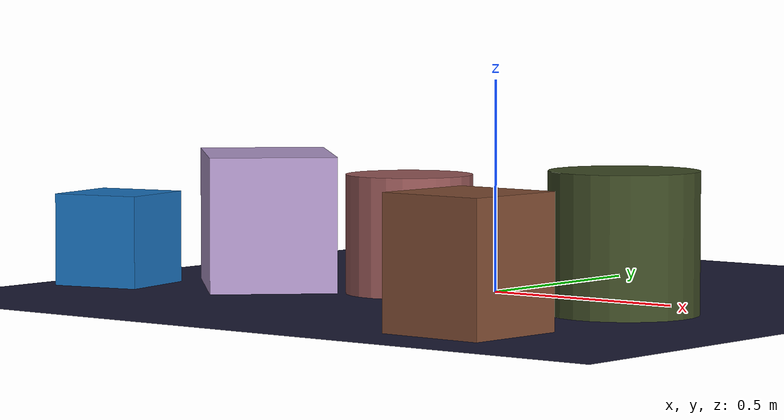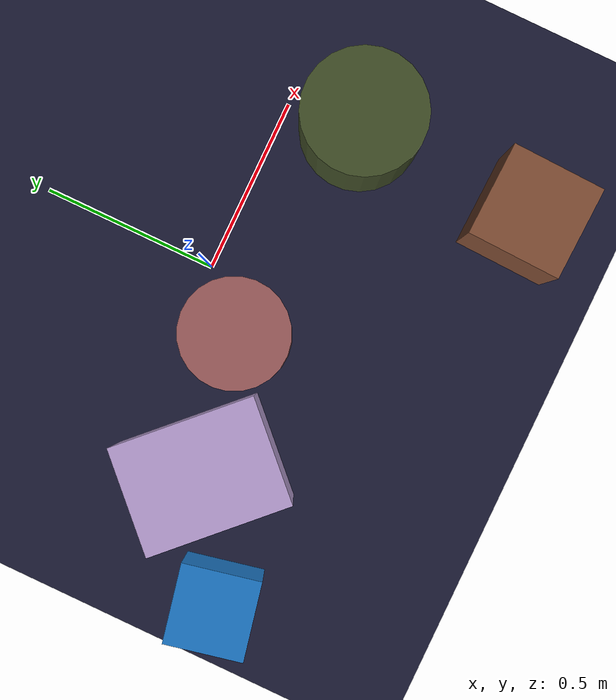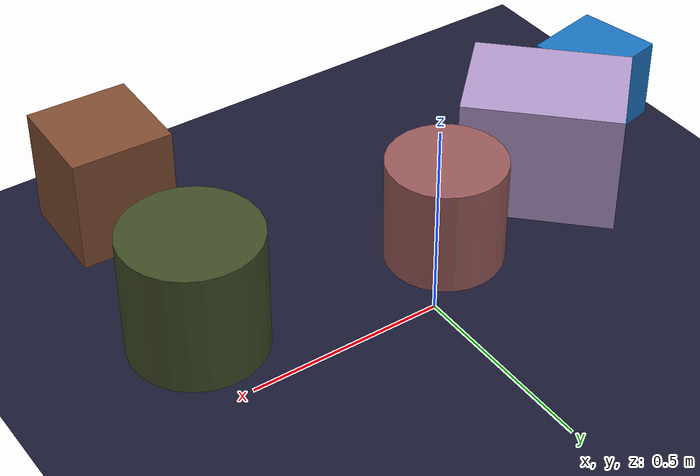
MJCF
<mujoco>
   <asset>
<texture type="skybox" builtin="gradient" rgb1="0.3 0.6 0.7" rgb2="0.7 0.7 0.7" width="500" height="500"/>
<texture name="checker_0" builtin="checker" rgb1="0.2 0.8 0.6" rgb2="0.0 0.1 0.9" width="500" height="500"/>
<texture name="checker_1" builtin="checker" rgb1="0.1 0.6 0.0" rgb2="0.4 0.0 0.3" width="500" height="500"/>
<texture name="flat_2" builtin="flat" rgb1="0.7 0.6 0.8" rgb2="0.7 0.6 0.8"  width="500" height="500"/>
<texture name="flat_3" builtin="flat" rgb1="0.5 0.3 0.2" rgb2="0.5 0.3 0.2"  width="500" height="500"/>
<texture name="gradient_4" builtin="gradient" rgb1="1.0 0.5 0.2" rgb2="0.2 0.2 0.5" width="500" height="500"/><material name="checker_0_mat" reflectance="0.5762443903346386" texrepeat="7 7" texture="checker_0" texuniform="false" />
<material name="checker_1_mat" reflectance="0.9030265112273327" texrepeat="10 10" texture="checker_1" texuniform="false" />
<material name="flat_2_mat" reflectance="0.22489847117468797" texture="flat_2" texuniform="true"/>
<material name="flat_3_mat" reflectance="0.05568677334430705" texture="flat_3" texuniform="true"/>
<material name="gradient_4_mat" reflectance="0.7829716509309265" texture="gradient_4" texuniform="true"/>
   </asset>

   <worldbody>
     <geom type="plane" size="1 1 0.1" rgba="0.1 0.1 0.2 1" />
<light pos="0.19199810840675813 -0.32131403202187747 2" dir="0 0 -1" cutoff="90" diffuse="1 1 1" specular="1 1 1"/>
<geom type="box" pos="-0.83 -0.41 0.11" size="0.11 0.11 0.11" material="checker_0_mat" euler="0 0 12" />
<geom type="cylinder" pos="0.52 -0.21 0.16" size="0.17 0.16 0.16" material="checker_1_mat" euler="0 0 70" />
<geom type="box" pos="-0.51 -0.23 0.16" size="0.15 0.2 0.16" material="flat_2_mat" euler="0 0 45" />
<geom type="box" pos="0.48 -0.72 0.15" size="0.13 0.13 0.15" material="flat_3_mat" euler="0 0 88" />
<geom type="cylinder" pos="-0.14 -0.15 0.14" size="0.15 0.14 0.14" material="gradient_4_mat" euler="0 0 63" /><camera euler="60 0 180" fovy="60" name="camera1" pos="-0.2 -1.5 1"></camera>   </worldbody>
   <visual>
      <headlight diffuse="0.7 0.7 0.7"/>
   </visual>
</mujoco>
